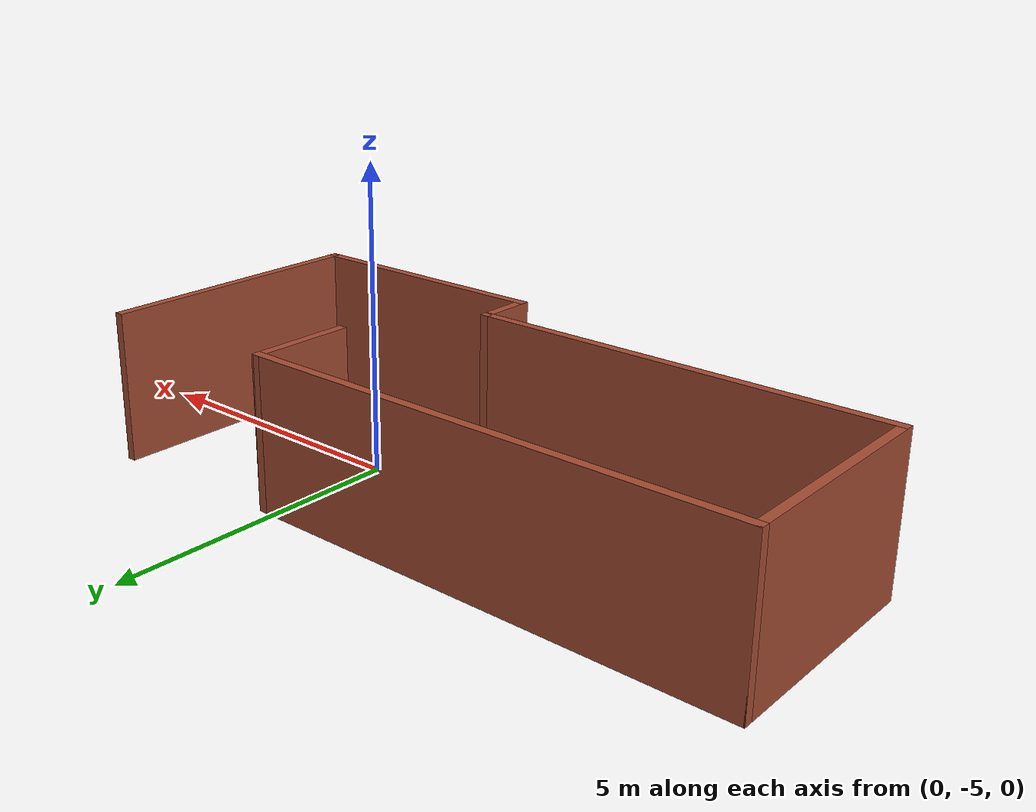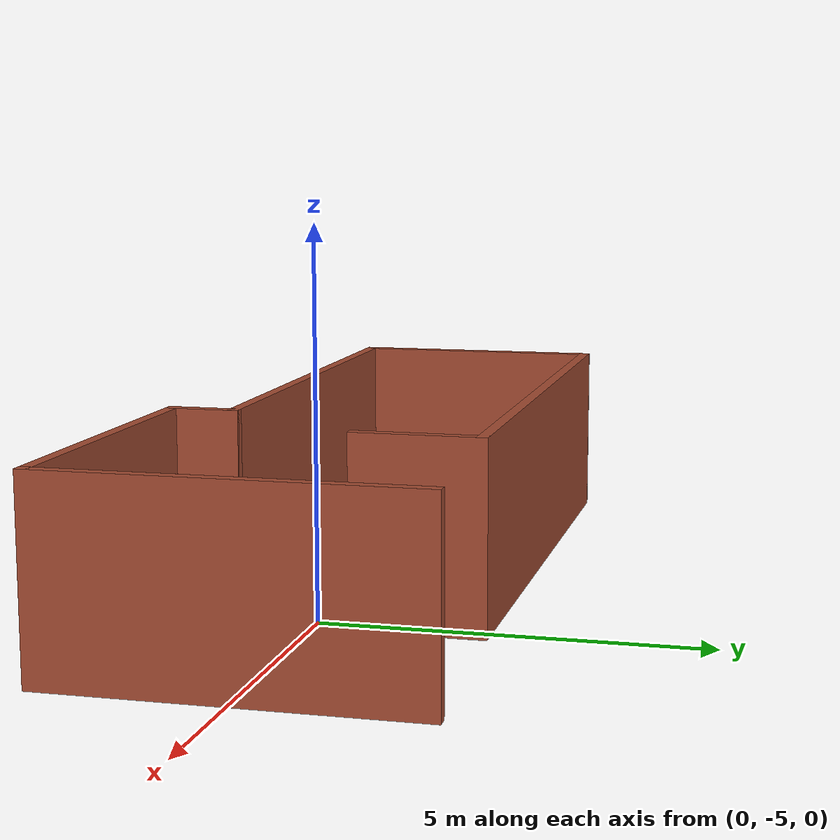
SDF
<?xml version='1.0'?>
<sdf version='1.6'>
  <model name='building'>
    <pose frame=''>-2.30116 -5.00319 0 0 -0 0</pose>
    <link name='Wall_10'>
      <collision name='Wall_10_Collision'>
        <geometry>
          <box>
            <size>7 0.15 2.5</size>
          </box>
        </geometry>
        <pose frame=''>0 0 1.25 0 -0 0</pose>
      </collision>
      <visual name='Wall_10_Visual'>
        <pose frame=''>0 0 1.25 0 -0 0</pose>
        <geometry>
          <box>
            <size>7 0.15 2.5</size>
          </box>
        </geometry>
        <material>
          <script>
            <uri>file://media/materials/scripts/gazebo.material</uri>
            <name>Gazebo/Bricks</name>
          </script>
          <ambient>0.996078 0.47451 0.0196078 1</ambient>
        </material>
        <meta>
          <layer>0</layer>
        </meta>
      </visual>
      <pose frame=''>-2.175 -1.45 0 0 -0 0</pose>
    </link>
    <link name='Wall_11'>
      <collision name='Wall_11_Collision'>
        <geometry>
          <box>
            <size>1 0.15 2.5</size>
          </box>
        </geometry>
        <pose frame=''>0 0 1.25 0 -0 0</pose>
      </collision>
      <visual name='Wall_11_Visual'>
        <pose frame=''>0 0 1.25 0 -0 0</pose>
        <geometry>
          <box>
            <size>1 0.15 2.5</size>
          </box>
        </geometry>
        <material>
          <script>
            <uri>file://media/materials/scripts/gazebo.material</uri>
            <name>Gazebo/Bricks</name>
          </script>
          <ambient>0.996078 0.47451 0.0196078 1</ambient>
        </material>
        <meta>
          <layer>0</layer>
        </meta>
      </visual>
      <pose frame=''>1.25 -1.875 0 0 -0 -1.5708</pose>
    </link>
    <link name='Wall_12'>
      <collision name='Wall_12_Collision'>
        <geometry>
          <box>
            <size>4.5 0.15 2.5</size>
          </box>
        </geometry>
        <pose frame=''>0 0 1.25 0 -0 0</pose>
      </collision>
      <visual name='Wall_12_Visual'>
        <pose frame=''>0 0 1.25 0 -0 0</pose>
        <geometry>
          <box>
            <size>4.5 0.15 2.5</size>
          </box>
        </geometry>
        <material>
          <script>
            <uri>file://media/materials/scripts/gazebo.material</uri>
            <name>Gazebo/Bricks</name>
          </script>
          <ambient>0.996078 0.47451 0.0196078 1</ambient>
        </material>
        <meta>
          <layer>0</layer>
        </meta>
      </visual>
      <pose frame=''>3.425 -2.3 0 0 -0 0</pose>
    </link>
    <link name='Wall_13'>
      <collision name='Wall_13_Collision'>
        <geometry>
          <box>
            <size>4.75 0.15 2.5</size>
          </box>
        </geometry>
        <pose frame=''>0 0 1.25 0 -0 0</pose>
      </collision>
      <visual name='Wall_13_Visual'>
        <pose frame=''>0 0 1.25 0 -0 0</pose>
        <geometry>
          <box>
            <size>4.75 0.15 2.5</size>
          </box>
        </geometry>
        <material>
          <script>
            <uri>file://media/materials/scripts/gazebo.material</uri>
            <name>Gazebo/Bricks</name>
          </script>
          <ambient>0.996078 0.47451 0.0196078 1</ambient>
        </material>
        <meta>
          <layer>0</layer>
        </meta>
      </visual>
      <pose frame=''>5.6 -0 0 0 -0 1.5708</pose>
    </link>
    <link name='Wall_3'>
      <collision name='Wall_3_Collision'>
        <geometry>
          <box>
            <size>8.25 0.15 2.5</size>
          </box>
        </geometry>
        <pose frame=''>0 0 1.25 0 -0 0</pose>
      </collision>
      <visual name='Wall_3_Visual'>
        <pose frame=''>0 0 1.25 0 -0 0</pose>
        <geometry>
          <box>
            <size>8.25 0.15 2.5</size>
          </box>
        </geometry>
        <material>
          <script>
            <uri>file://media/materials/scripts/gazebo.material</uri>
            <name>Gazebo/Bricks</name>
          </script>
          <ambient>0.435294 0.796078 0.67451 1</ambient>
        </material>
        <meta>
          <layer>0</layer>
        </meta>
      </visual>
      <pose frame=''>-1.55 2.15 0 0 -0 0</pose>
    </link>
    <link name='Wall_4'>
      <collision name='Wall_4_Collision'>
        <geometry>
          <box>
            <size>1.75 0.15 2.5</size>
          </box>
        </geometry>
        <pose frame=''>0 0 1.25 0 -0 0</pose>
      </collision>
      <visual name='Wall_4_Visual'>
        <pose frame=''>0 0 1.25 0 -0 0</pose>
        <geometry>
          <box>
            <size>1.75 0.15 2.5</size>
          </box>
        </geometry>
        <material>
          <script>
            <uri>file://media/materials/scripts/gazebo.material</uri>
            <name>Gazebo/Bricks</name>
          </script>
          <ambient>0.996078 0.47451 0.0196078 1</ambient>
        </material>
        <meta>
          <layer>0</layer>
        </meta>
      </visual>
      <pose frame=''>2.5 1.35 0 0 -0 -1.5708</pose>
    </link>
    <link name='Wall_9'>
      <collision name='Wall_9_Collision'>
        <geometry>
          <box>
            <size>3.75 0.15 2.5</size>
          </box>
        </geometry>
        <pose frame=''>0 0 1.25 0 -0 0</pose>
      </collision>
      <visual name='Wall_9_Visual'>
        <pose frame=''>0 0 1.25 0 -0 0</pose>
        <geometry>
          <box>
            <size>3.75 0.15 2.5</size>
          </box>
        </geometry>
        <material>
          <script>
            <uri>file://media/materials/scripts/gazebo.material</uri>
            <name>Gazebo/Bricks</name>
          </script>
          <ambient>0.996078 0.47451 0.0196078 1</ambient>
        </material>
        <meta>
          <layer>0</layer>
        </meta>
      </visual>
      <pose frame=''>-5.6 0.35 0 0 -0 -1.5708</pose>
    </link>
    <static>1</static>
  </model>
</sdf>
